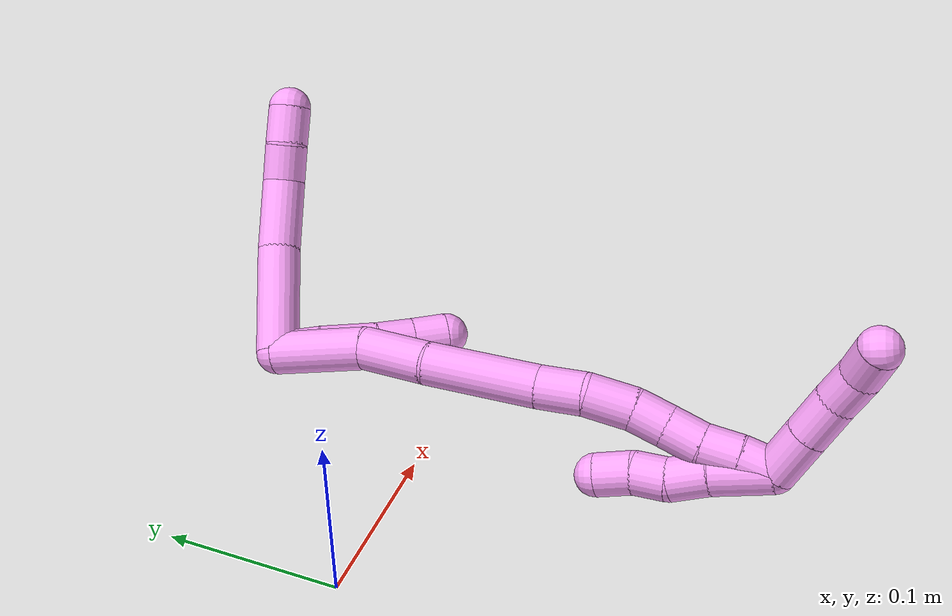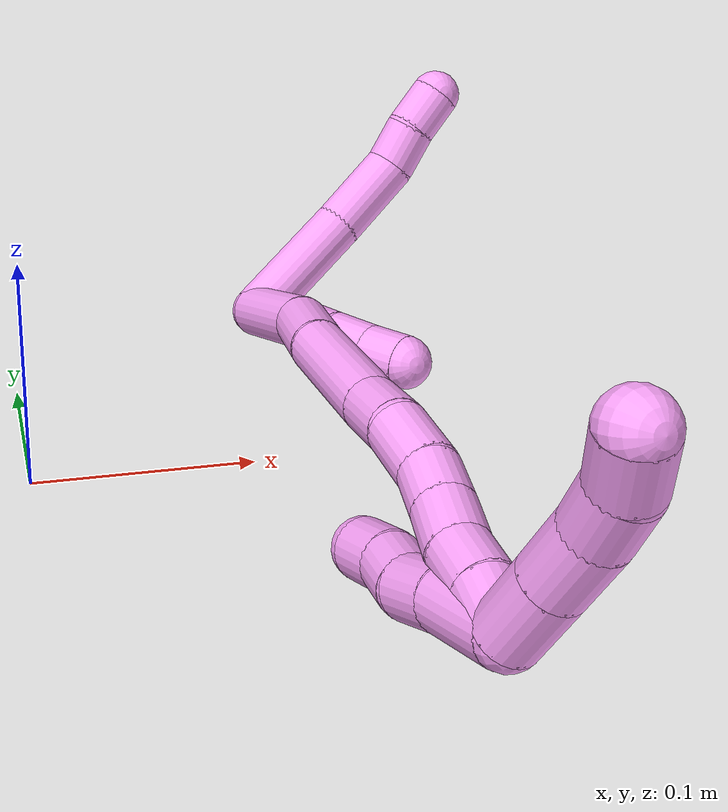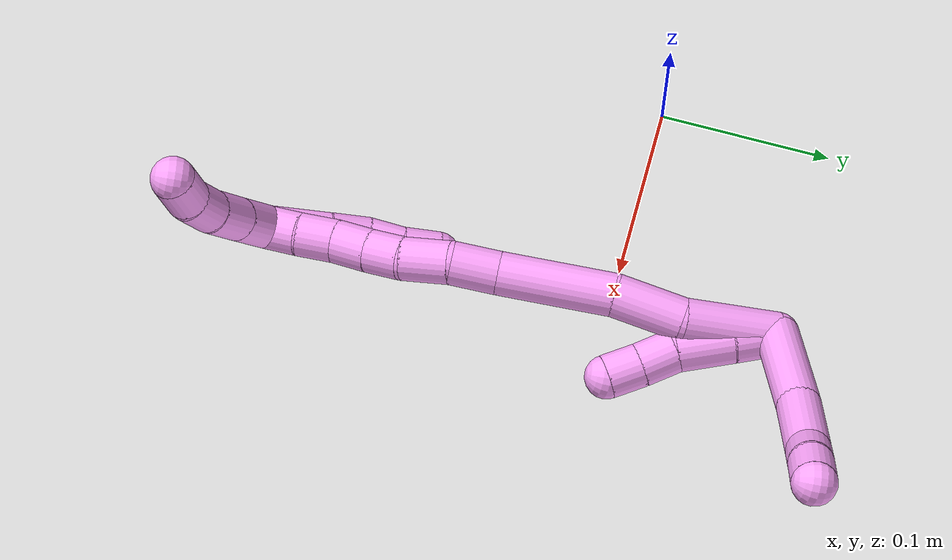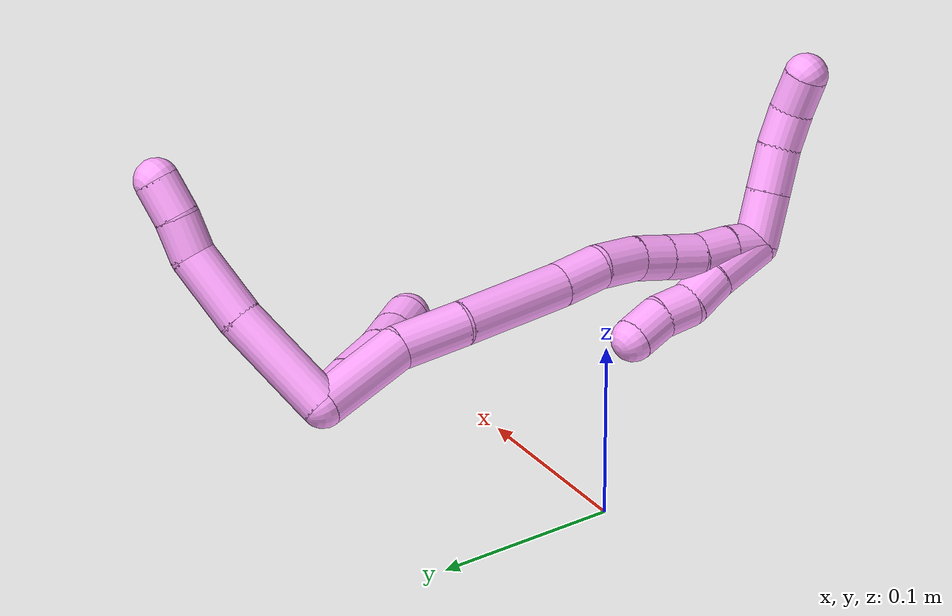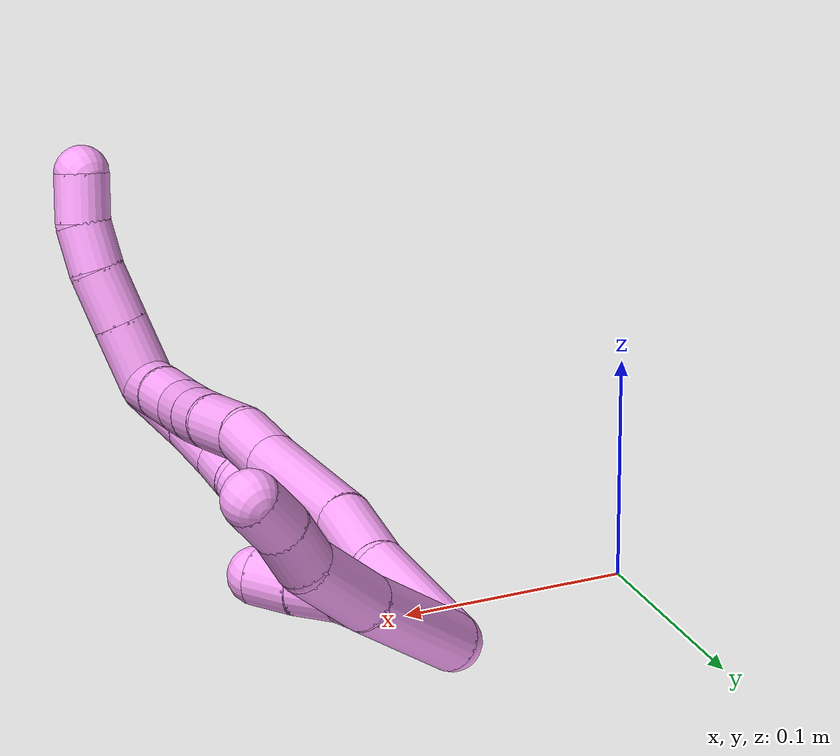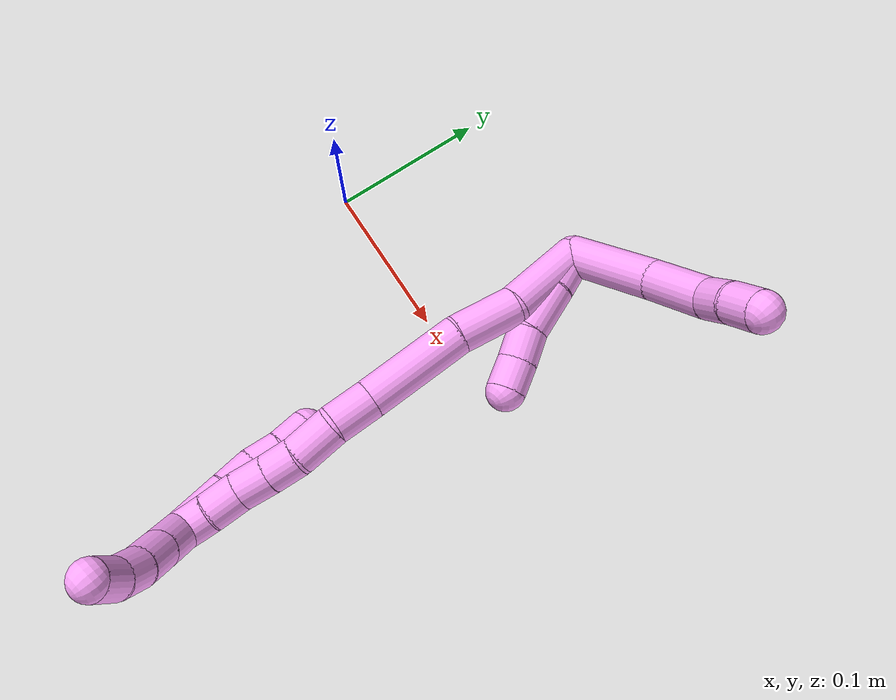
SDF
<sdf version="1.7">
 <world name="default">
  <model name="4">
   <static>0</static>
   <link name="4">
    <collision name="collision-cylinder-e_1_2_8">
     <pose>-0.001832 0.031658 -0.001998 -1.63382 -0.057684 0.061437</pose>
     <geometry><cylinder><radius>0.0125</radius><length>0.063547</length></cylinder></geometry>
     <surface>
      <friction><ode><mu>1.16</mu><mu2>1.16</mu2><slip1>0</slip1><slip2>0</slip2></ode></friction>
      <contact><ode><kp>1e+06</kp><kd>1</kd><max_vel>0</max_vel><min_depth>0.001</min_depth></ode></contact>
     </surface>
    </collision>
    <visual name="visual-cylinder-e_1_2_8">
     <pose>-0.001832 0.031658 -0.001998 -1.63382 -0.057684 0.061437</pose>
     <geometry><cylinder><radius>0.0125</radius><length>0.063547</length></cylinder></geometry>
     <material><ambient>1 0.65098 0.996078 1</ambient></material>
    </visual>
    <collision name="collision-cylinder-e_2_8_9">
     <pose>-0.006251 0.084147 -0.003356 -1.54011 -0.123494 0.119771</pose>
     <geometry><cylinder><radius>0.0125</radius><length>0.042003</length></cylinder></geometry>
     <surface>
      <friction><ode><mu>1.16</mu><mu2>1.16</mu2><slip1>0</slip1><slip2>0</slip2></ode></friction>
      <contact><ode><kp>1e+06</kp><kd>1</kd><max_vel>0</max_vel><min_depth>0.001</min_depth></ode></contact>
     </surface>
    </collision>
    <visual name="visual-cylinder-e_2_8_9">
     <pose>-0.006251 0.084147 -0.003356 -1.54011 -0.123494 0.119771</pose>
     <geometry><cylinder><radius>0.0125</radius><length>0.042003</length></cylinder></geometry>
     <material><ambient>1 0.65098 0.996078 1</ambient></material>
    </visual>
    <collision name="collision-cylinder-e_3_9_10">
     <pose>-0.01328 0.114979 -0.000805 -1.38192 -0.411445 0.34176</pose>
     <geometry><cylinder><radius>0.0125</radius><length>0.022216</length></cylinder></geometry>
     <surface>
      <friction><ode><mu>1.16</mu><mu2>1.16</mu2><slip1>0</slip1><slip2>0</slip2></ode></friction>
      <contact><ode><kp>1e+06</kp><kd>1</kd><max_vel>0</max_vel><min_depth>0.001</min_depth></ode></contact>
     </surface>
    </collision>
    <visual name="visual-cylinder-e_3_9_10">
     <pose>-0.01328 0.114979 -0.000805 -1.38192 -0.411445 0.34176</pose>
     <geometry><cylinder><radius>0.0125</radius><length>0.022216</length></cylinder></geometry>
     <material><ambient>1 0.65098 0.996078 1</ambient></material>
    </visual>
    <collision name="collision-cylinder-e_4_10_6">
     <pose>-0.020548 0.135648 0.002437 -1.44674 -0.256972 0.227193</pose>
     <geometry><cylinder><radius>0.0125</radius><length>0.022234</length></cylinder></geometry>
     <surface>
      <friction><ode><mu>1.16</mu><mu2>1.16</mu2><slip1>0</slip1><slip2>0</slip2></ode></friction>
      <contact><ode><kp>1e+06</kp><kd>1</kd><max_vel>0</max_vel><min_depth>0.001</min_depth></ode></contact>
     </surface>
    </collision>
    <visual name="visual-cylinder-e_4_10_6">
     <pose>-0.020548 0.135648 0.002437 -1.44674 -0.256972 0.227193</pose>
     <geometry><cylinder><radius>0.0125</radius><length>0.022234</length></cylinder></geometry>
     <material><ambient>1 0.65098 0.996078 1</ambient></material>
    </visual>
    <collision name="collision-cylinder-e_1_2_11">
     <pose>0.003428 0.002277 0.012431 -0.181184 0.264849 -0.0242</pose>
     <geometry><cylinder><radius>0.0125</radius><length>0.026188</length></cylinder></geometry>
     <surface>
      <friction><ode><mu>1.16</mu><mu2>1.16</mu2><slip1>0</slip1><slip2>0</slip2></ode></friction>
      <contact><ode><kp>1e+06</kp><kd>1</kd><max_vel>0</max_vel><min_depth>0.001</min_depth></ode></contact>
     </surface>
    </collision>
    <visual name="visual-cylinder-e_1_2_11">
     <pose>0.003428 0.002277 0.012431 -0.181184 0.264849 -0.0242</pose>
     <geometry><cylinder><radius>0.0125</radius><length>0.026188</length></cylinder></geometry>
     <material><ambient>1 0.65098 0.996078 1</ambient></material>
    </visual>
    <collision name="collision-cylinder-e_2_11_12">
     <pose>0.011797 0.006438 0.040216 -0.122041 0.309223 -0.019044</pose>
     <geometry><cylinder><radius>0.0125</radius><length>0.03248</length></cylinder></geometry>
     <surface>
      <friction><ode><mu>1.16</mu><mu2>1.16</mu2><slip1>0</slip1><slip2>0</slip2></ode></friction>
      <contact><ode><kp>1e+06</kp><kd>1</kd><max_vel>0</max_vel><min_depth>0.001</min_depth></ode></contact>
     </surface>
    </collision>
    <visual name="visual-cylinder-e_2_11_12">
     <pose>0.011797 0.006438 0.040216 -0.122041 0.309223 -0.019044</pose>
     <geometry><cylinder><radius>0.0125</radius><length>0.03248</length></cylinder></geometry>
     <material><ambient>1 0.65098 0.996078 1</ambient></material>
    </visual>
    <collision name="collision-cylinder-e_3_12_13">
     <pose>0.021901 0.010861 0.064526 -0.276422 0.506309 -0.07194</pose>
     <geometry><cylinder><radius>0.0125</radius><length>0.021288</length></cylinder></geometry>
     <surface>
      <friction><ode><mu>1.16</mu><mu2>1.16</mu2><slip1>0</slip1><slip2>0</slip2></ode></friction>
      <contact><ode><kp>1e+06</kp><kd>1</kd><max_vel>0</max_vel><min_depth>0.001</min_depth></ode></contact>
     </surface>
    </collision>
    <visual name="visual-cylinder-e_3_12_13">
     <pose>0.021901 0.010861 0.064526 -0.276422 0.506309 -0.07194</pose>
     <geometry><cylinder><radius>0.0125</radius><length>0.021288</length></cylinder></geometry>
     <material><ambient>1 0.65098 0.996078 1</ambient></material>
    </visual>
    <collision name="collision-cylinder-e_4_13_5">
     <pose>0.031198 0.015818 0.082284 -0.267845 0.425358 -0.058172</pose>
     <geometry><cylinder><radius>0.0125</radius><length>0.020044</length></cylinder></geometry>
     <surface>
      <friction><ode><mu>1.16</mu><mu2>1.16</mu2><slip1>0</slip1><slip2>0</slip2></ode></friction>
      <contact><ode><kp>1e+06</kp><kd>1</kd><max_vel>0</max_vel><min_depth>0.001</min_depth></ode></contact>
     </surface>
    </collision>
    <visual name="visual-cylinder-e_4_13_5">
     <pose>0.031198 0.015818 0.082284 -0.267845 0.425358 -0.058172</pose>
     <geometry><cylinder><radius>0.0125</radius><length>0.020044</length></cylinder></geometry>
     <material><ambient>1 0.65098 0.996078 1</ambient></material>
    </visual>
    <collision name="collision-cylinder-e_1_2_14">
     <pose>0.000152 0.000277 0.027646 -0.010018 0.005504 -2.8e-05</pose>
     <geometry><cylinder><radius>0.0125</radius><length>0.055295</length></cylinder></geometry>
     <surface>
      <friction><ode><mu>1.16</mu><mu2>1.16</mu2><slip1>0</slip1><slip2>0</slip2></ode></friction>
      <contact><ode><kp>1e+06</kp><kd>1</kd><max_vel>0</max_vel><min_depth>0.001</min_depth></ode></contact>
     </surface>
    </collision>
    <visual name="visual-cylinder-e_1_2_14">
     <pose>0.000152 0.000277 0.027646 -0.010018 0.005504 -2.8e-05</pose>
     <geometry><cylinder><radius>0.0125</radius><length>0.055295</length></cylinder></geometry>
     <material><ambient>1 0.65098 0.996078 1</ambient></material>
    </visual>
    <collision name="collision-cylinder-e_2_14_15">
     <pose>-9e-05 -0.004858 0.074646 0.272645 -0.019615 -0.002691</pose>
     <geometry><cylinder><radius>0.0125</radius><length>0.040201</length></cylinder></geometry>
     <surface>
      <friction><ode><mu>1.16</mu><mu2>1.16</mu2><slip1>0</slip1><slip2>0</slip2></ode></friction>
      <contact><ode><kp>1e+06</kp><kd>1</kd><max_vel>0</max_vel><min_depth>0.001</min_depth></ode></contact>
     </surface>
    </collision>
    <visual name="visual-cylinder-e_2_14_15">
     <pose>-9e-05 -0.004858 0.074646 0.272645 -0.019615 -0.002691</pose>
     <geometry><cylinder><radius>0.0125</radius><length>0.040201</length></cylinder></geometry>
     <material><ambient>1 0.65098 0.996078 1</ambient></material>
    </visual>
    <collision name="collision-cylinder-e_3_15_16">
     <pose>0.003873 -0.017135 0.126086 0.210801 0.132029 0.013988</pose>
     <geometry><cylinder><radius>0.0125</radius><length>0.066201</length></cylinder></geometry>
     <surface>
      <friction><ode><mu>1.16</mu><mu2>1.16</mu2><slip1>0</slip1><slip2>0</slip2></ode></friction>
      <contact><ode><kp>1e+06</kp><kd>1</kd><max_vel>0</max_vel><min_depth>0.001</min_depth></ode></contact>
     </surface>
    </collision>
    <visual name="visual-cylinder-e_3_15_16">
     <pose>0.003873 -0.017135 0.126086 0.210801 0.132029 0.013988</pose>
     <geometry><cylinder><radius>0.0125</radius><length>0.066201</length></cylinder></geometry>
     <material><ambient>1 0.65098 0.996078 1</ambient></material>
    </visual>
    <collision name="collision-cylinder-e_4_16_17">
     <pose>0.009176 -0.026341 0.171486 0.174002 0.069825 0.006093</pose>
     <geometry><cylinder><radius>0.0125</radius><length>0.0271</length></cylinder></geometry>
     <surface>
      <friction><ode><mu>1.16</mu><mu2>1.16</mu2><slip1>0</slip1><slip2>0</slip2></ode></friction>
      <contact><ode><kp>1e+06</kp><kd>1</kd><max_vel>0</max_vel><min_depth>0.001</min_depth></ode></contact>
     </surface>
    </collision>
    <visual name="visual-cylinder-e_4_16_17">
     <pose>0.009176 -0.026341 0.171486 0.174002 0.069825 0.006093</pose>
     <geometry><cylinder><radius>0.0125</radius><length>0.0271</length></cylinder></geometry>
     <material><ambient>1 0.65098 0.996078 1</ambient></material>
    </visual>
    <collision name="collision-cylinder-e_5_17_18">
     <pose>0.014269 -0.032272 0.197587 0.273724 0.302615 0.041992</pose>
     <geometry><cylinder><radius>0.0125</radius><length>0.027831</length></cylinder></geometry>
     <surface>
      <friction><ode><mu>1.16</mu><mu2>1.16</mu2><slip1>0</slip1><slip2>0</slip2></ode></friction>
      <contact><ode><kp>1e+06</kp><kd>1</kd><max_vel>0</max_vel><min_depth>0.001</min_depth></ode></contact>
     </surface>
    </collision>
    <visual name="visual-cylinder-e_5_17_18">
     <pose>0.014269 -0.032272 0.197587 0.273724 0.302615 0.041992</pose>
     <geometry><cylinder><radius>0.0125</radius><length>0.027831</length></cylinder></geometry>
     <material><ambient>1 0.65098 0.996078 1</ambient></material>
    </visual>
    <collision name="collision-cylinder-e_6_18_19">
     <pose>0.021078 -0.040246 0.219107 0.465308 0.266019 0.063385</pose>
     <geometry><cylinder><radius>0.0125</radius><length>0.020252</length></cylinder></geometry>
     <surface>
      <friction><ode><mu>1.16</mu><mu2>1.16</mu2><slip1>0</slip1><slip2>0</slip2></ode></friction>
      <contact><ode><kp>1e+06</kp><kd>1</kd><max_vel>0</max_vel><min_depth>0.001</min_depth></ode></contact>
     </surface>
    </collision>
    <visual name="visual-cylinder-e_6_18_19">
     <pose>0.021078 -0.040246 0.219107 0.465308 0.266019 0.063385</pose>
     <geometry><cylinder><radius>0.0125</radius><length>0.020252</length></cylinder></geometry>
     <material><ambient>1 0.65098 0.996078 1</ambient></material>
    </visual>
    <collision name="collision-cylinder-e_7_19_20">
     <pose>0.026104 -0.049482 0.237101 0.482489 0.222323 0.054912</pose>
     <geometry><cylinder><radius>0.0125</radius><length>0.021443</length></cylinder></geometry>
     <surface>
      <friction><ode><mu>1.16</mu><mu2>1.16</mu2><slip1>0</slip1><slip2>0</slip2></ode></friction>
      <contact><ode><kp>1e+06</kp><kd>1</kd><max_vel>0</max_vel><min_depth>0.001</min_depth></ode></contact>
     </surface>
    </collision>
    <visual name="visual-cylinder-e_7_19_20">
     <pose>0.026104 -0.049482 0.237101 0.482489 0.222323 0.054912</pose>
     <geometry><cylinder><radius>0.0125</radius><length>0.021443</length></cylinder></geometry>
     <material><ambient>1 0.65098 0.996078 1</ambient></material>
    </visual>
    <collision name="collision-cylinder-e_8_20_21">
     <pose>0.030554 -0.057413 0.256537 0.29392 0.193862 0.028785</pose>
     <geometry><cylinder><radius>0.0125</radius><length>0.021661</length></cylinder></geometry>
     <surface>
      <friction><ode><mu>1.16</mu><mu2>1.16</mu2><slip1>0</slip1><slip2>0</slip2></ode></friction>
      <contact><ode><kp>1e+06</kp><kd>1</kd><max_vel>0</max_vel><min_depth>0.001</min_depth></ode></contact>
     </surface>
    </collision>
    <visual name="visual-cylinder-e_8_20_21">
     <pose>0.030554 -0.057413 0.256537 0.29392 0.193862 0.028785</pose>
     <geometry><cylinder><radius>0.0125</radius><length>0.021661</length></cylinder></geometry>
     <material><ambient>1 0.65098 0.996078 1</ambient></material>
    </visual>
    <collision name="collision-cylinder-e_9_21_1">
     <pose>0.034877 -0.064267 0.275704 0.397354 0.225313 0.045548</pose>
     <geometry><cylinder><radius>0.0125</radius><length>0.020016</length></cylinder></geometry>
     <surface>
      <friction><ode><mu>1.16</mu><mu2>1.16</mu2><slip1>0</slip1><slip2>0</slip2></ode></friction>
      <contact><ode><kp>1e+06</kp><kd>1</kd><max_vel>0</max_vel><min_depth>0.001</min_depth></ode></contact>
     </surface>
    </collision>
    <visual name="visual-cylinder-e_9_21_1">
     <pose>0.034877 -0.064267 0.275704 0.397354 0.225313 0.045548</pose>
     <geometry><cylinder><radius>0.0125</radius><length>0.020016</length></cylinder></geometry>
     <material><ambient>1 0.65098 0.996078 1</ambient></material>
    </visual>
    <collision name="collision-cylinder-e_1_1_22">
     <pose>0.029505 -0.059766 0.294518 -0.700351 -0.53487 0.199479</pose>
     <geometry><cylinder><radius>0.0125</radius><length>0.029852</length></cylinder></geometry>
     <surface>
      <friction><ode><mu>1.16</mu><mu2>1.16</mu2><slip1>0</slip1><slip2>0</slip2></ode></friction>
      <contact><ode><kp>1e+06</kp><kd>1</kd><max_vel>0</max_vel><min_depth>0.001</min_depth></ode></contact>
     </surface>
    </collision>
    <visual name="visual-cylinder-e_1_1_22">
     <pose>0.029505 -0.059766 0.294518 -0.700351 -0.53487 0.199479</pose>
     <geometry><cylinder><radius>0.0125</radius><length>0.029852</length></cylinder></geometry>
     <material><ambient>1 0.65098 0.996078 1</ambient></material>
    </visual>
    <collision name="collision-cylinder-e_2_22_23">
     <pose>0.015199 -0.044349 0.312871 -0.696678 -0.541757 0.201016</pose>
     <geometry><cylinder><radius>0.0125</radius><length>0.025975</length></cylinder></geometry>
     <surface>
      <friction><ode><mu>1.16</mu><mu2>1.16</mu2><slip1>0</slip1><slip2>0</slip2></ode></friction>
      <contact><ode><kp>1e+06</kp><kd>1</kd><max_vel>0</max_vel><min_depth>0.001</min_depth></ode></contact>
     </surface>
    </collision>
    <visual name="visual-cylinder-e_2_22_23">
     <pose>0.015199 -0.044349 0.312871 -0.696678 -0.541757 0.201016</pose>
     <geometry><cylinder><radius>0.0125</radius><length>0.025975</length></cylinder></geometry>
     <material><ambient>1 0.65098 0.996078 1</ambient></material>
    </visual>
    <collision name="collision-cylinder-e_3_23_24">
     <pose>0.001867 -0.032335 0.328466 -0.604238 -0.658357 0.212131</pose>
     <geometry><cylinder><radius>0.0125</radius><length>0.021692</length></cylinder></geometry>
     <surface>
      <friction><ode><mu>1.16</mu><mu2>1.16</mu2><slip1>0</slip1><slip2>0</slip2></ode></friction>
      <contact><ode><kp>1e+06</kp><kd>1</kd><max_vel>0</max_vel><min_depth>0.001</min_depth></ode></contact>
     </surface>
    </collision>
    <visual name="visual-cylinder-e_3_23_24">
     <pose>0.001867 -0.032335 0.328466 -0.604238 -0.658357 0.212131</pose>
     <geometry><cylinder><radius>0.0125</radius><length>0.021692</length></cylinder></geometry>
     <material><ambient>1 0.65098 0.996078 1</ambient></material>
    </visual>
    <collision name="collision-cylinder-e_4_24_4">
     <pose>-0.013724 -0.023723 0.341199 -0.582528 -0.921793 0.29556</pose>
     <geometry><cylinder><radius>0.0125</radius><length>0.022481</length></cylinder></geometry>
     <surface>
      <friction><ode><mu>1.16</mu><mu2>1.16</mu2><slip1>0</slip1><slip2>0</slip2></ode></friction>
      <contact><ode><kp>1e+06</kp><kd>1</kd><max_vel>0</max_vel><min_depth>0.001</min_depth></ode></contact>
     </surface>
    </collision>
    <visual name="visual-cylinder-e_4_24_4">
     <pose>-0.013724 -0.023723 0.341199 -0.582528 -0.921793 0.29556</pose>
     <geometry><cylinder><radius>0.0125</radius><length>0.022481</length></cylinder></geometry>
     <material><ambient>1 0.65098 0.996078 1</ambient></material>
    </visual>
    <collision name="collision-cylinder-e_1_1_25">
     <pose>0.036376 -0.068473 0.267002 3.11723 -0.041604 -2.08224</pose>
     <geometry><cylinder><radius>0.0125</radius><length>0.035436</length></cylinder></geometry>
     <surface>
      <friction><ode><mu>1.16</mu><mu2>1.16</mu2><slip1>0</slip1><slip2>0</slip2></ode></friction>
      <contact><ode><kp>1e+06</kp><kd>1</kd><max_vel>0</max_vel><min_depth>0.001</min_depth></ode></contact>
     </surface>
    </collision>
    <visual name="visual-cylinder-e_1_1_25">
     <pose>0.036376 -0.068473 0.267002 3.11723 -0.041604 -2.08224</pose>
     <geometry><cylinder><radius>0.0125</radius><length>0.035436</length></cylinder></geometry>
     <material><ambient>1 0.65098 0.996078 1</ambient></material>
    </visual>
    <collision name="collision-cylinder-e_2_25_26">
     <pose>0.036127 -0.070253 0.237922 3.02366 0.042581 0.692366</pose>
     <geometry><cylinder><radius>0.0125</radius><length>0.022944</length></cylinder></geometry>
     <surface>
      <friction><ode><mu>1.16</mu><mu2>1.16</mu2><slip1>0</slip1><slip2>0</slip2></ode></friction>
      <contact><ode><kp>1e+06</kp><kd>1</kd><max_vel>0</max_vel><min_depth>0.001</min_depth></ode></contact>
     </surface>
    </collision>
    <visual name="visual-cylinder-e_2_25_26">
     <pose>0.036127 -0.070253 0.237922 3.02366 0.042581 0.692366</pose>
     <geometry><cylinder><radius>0.0125</radius><length>0.022944</length></cylinder></geometry>
     <material><ambient>1 0.65098 0.996078 1</ambient></material>
    </visual>
    <collision name="collision-cylinder-e_3_26_27">
     <pose>0.036357 -0.069437 0.216688 -2.92537 -0.025647 0.235223</pose>
     <geometry><cylinder><radius>0.0125</radius><length>0.02018</length></cylinder></geometry>
     <surface>
      <friction><ode><mu>1.16</mu><mu2>1.16</mu2><slip1>0</slip1><slip2>0</slip2></ode></friction>
      <contact><ode><kp>1e+06</kp><kd>1</kd><max_vel>0</max_vel><min_depth>0.001</min_depth></ode></contact>
     </surface>
    </collision>
    <visual name="visual-cylinder-e_3_26_27">
     <pose>0.036357 -0.069437 0.216688 -2.92537 -0.025647 0.235223</pose>
     <geometry><cylinder><radius>0.0125</radius><length>0.02018</length></cylinder></geometry>
     <material><ambient>1 0.65098 0.996078 1</ambient></material>
    </visual>
    <collision name="collision-cylinder-e_4_27_3">
     <pose>0.03607 -0.067742 0.196127 3.09785 -0.002655 -0.121196</pose>
     <geometry><cylinder><radius>0.0125</radius><length>0.02144</length></cylinder></geometry>
     <surface>
      <friction><ode><mu>1.16</mu><mu2>1.16</mu2><slip1>0</slip1><slip2>0</slip2></ode></friction>
      <contact><ode><kp>1e+06</kp><kd>1</kd><max_vel>0</max_vel><min_depth>0.001</min_depth></ode></contact>
     </surface>
    </collision>
    <visual name="visual-cylinder-e_4_27_3">
     <pose>0.03607 -0.067742 0.196127 3.09785 -0.002655 -0.121196</pose>
     <geometry><cylinder><radius>0.0125</radius><length>0.02144</length></cylinder></geometry>
     <material><ambient>1 0.65098 0.996078 1</ambient></material>
    </visual>
    <collision name="collision-sphere-3">
     <pose>0.036041 -0.068211 0.185417 0 -0 0</pose>
     <geometry><sphere><radius>0.0125</radius></sphere></geometry>
     <surface>
      <friction><ode><mu>1.16</mu><mu2>1.16</mu2><slip1>0</slip1><slip2>0</slip2></ode></friction>
      <contact><ode><kp>1e+06</kp><kd>1</kd><max_vel>0</max_vel><min_depth>0.001</min_depth></ode></contact>
     </surface>
    </collision>
    <visual name="visual-sphere-3">
     <pose>0.036041 -0.068211 0.185417 0 -0 0</pose>
     <geometry><sphere><radius>0.0125</radius></sphere></geometry>
     <material><ambient>1 0.65098 0.996078 1</ambient></material>
    </visual>
    <collision name="collision-sphere-27">
     <pose>0.036098 -0.067273 0.206836 0 -0 0</pose>
     <geometry><sphere><radius>0.0125</radius></sphere></geometry>
     <surface>
      <friction><ode><mu>1.16</mu><mu2>1.16</mu2><slip1>0</slip1><slip2>0</slip2></ode></friction>
      <contact><ode><kp>1e+06</kp><kd>1</kd><max_vel>0</max_vel><min_depth>0.001</min_depth></ode></contact>
     </surface>
    </collision>
    <visual name="visual-sphere-27">
     <pose>0.036098 -0.067273 0.206836 0 -0 0</pose>
     <geometry><sphere><radius>0.0125</radius></sphere></geometry>
     <material><ambient>1 0.65098 0.996078 1</ambient></material>
    </visual>
    <collision name="collision-sphere-26">
     <pose>0.036616 -0.071601 0.22654 0 -0 0</pose>
     <geometry><sphere><radius>0.0125</radius></sphere></geometry>
     <surface>
      <friction><ode><mu>1.16</mu><mu2>1.16</mu2><slip1>0</slip1><slip2>0</slip2></ode></friction>
      <contact><ode><kp>1e+06</kp><kd>1</kd><max_vel>0</max_vel><min_depth>0.001</min_depth></ode></contact>
     </surface>
    </collision>
    <visual name="visual-sphere-26">
     <pose>0.036616 -0.071601 0.22654 0 -0 0</pose>
     <geometry><sphere><radius>0.0125</radius></sphere></geometry>
     <material><ambient>1 0.65098 0.996078 1</ambient></material>
    </visual>
    <collision name="collision-sphere-25">
     <pose>0.035639 -0.068904 0.249304 0 -0 0</pose>
     <geometry><sphere><radius>0.0125</radius></sphere></geometry>
     <surface>
      <friction><ode><mu>1.16</mu><mu2>1.16</mu2><slip1>0</slip1><slip2>0</slip2></ode></friction>
      <contact><ode><kp>1e+06</kp><kd>1</kd><max_vel>0</max_vel><min_depth>0.001</min_depth></ode></contact>
     </surface>
    </collision>
    <visual name="visual-sphere-25">
     <pose>0.035639 -0.068904 0.249304 0 -0 0</pose>
     <geometry><sphere><radius>0.0125</radius></sphere></geometry>
     <material><ambient>1 0.65098 0.996078 1</ambient></material>
    </visual>
    <collision name="collision-sphere-4">
     <pose>-0.022679 -0.019986 0.346872 0 -0 0</pose>
     <geometry><sphere><radius>0.0125</radius></sphere></geometry>
     <surface>
      <friction><ode><mu>1.16</mu><mu2>1.16</mu2><slip1>0</slip1><slip2>0</slip2></ode></friction>
      <contact><ode><kp>1e+06</kp><kd>1</kd><max_vel>0</max_vel><min_depth>0.001</min_depth></ode></contact>
     </surface>
    </collision>
    <visual name="visual-sphere-4">
     <pose>-0.022679 -0.019986 0.346872 0 -0 0</pose>
     <geometry><sphere><radius>0.0125</radius></sphere></geometry>
     <material><ambient>1 0.65098 0.996078 1</ambient></material>
    </visual>
    <collision name="collision-sphere-24">
     <pose>-0.004769 -0.027461 0.335526 0 -0 0</pose>
     <geometry><sphere><radius>0.0125</radius></sphere></geometry>
     <surface>
      <friction><ode><mu>1.16</mu><mu2>1.16</mu2><slip1>0</slip1><slip2>0</slip2></ode></friction>
      <contact><ode><kp>1e+06</kp><kd>1</kd><max_vel>0</max_vel><min_depth>0.001</min_depth></ode></contact>
     </surface>
    </collision>
    <visual name="visual-sphere-24">
     <pose>-0.004769 -0.027461 0.335526 0 -0 0</pose>
     <geometry><sphere><radius>0.0125</radius></sphere></geometry>
     <material><ambient>1 0.65098 0.996078 1</ambient></material>
    </visual>
    <collision name="collision-sphere-23">
     <pose>0.008502 -0.037209 0.321406 0 -0 0</pose>
     <geometry><sphere><radius>0.0125</radius></sphere></geometry>
     <surface>
      <friction><ode><mu>1.16</mu><mu2>1.16</mu2><slip1>0</slip1><slip2>0</slip2></ode></friction>
      <contact><ode><kp>1e+06</kp><kd>1</kd><max_vel>0</max_vel><min_depth>0.001</min_depth></ode></contact>
     </surface>
    </collision>
    <visual name="visual-sphere-23">
     <pose>0.008502 -0.037209 0.321406 0 -0 0</pose>
     <geometry><sphere><radius>0.0125</radius></sphere></geometry>
     <material><ambient>1 0.65098 0.996078 1</ambient></material>
    </visual>
    <collision name="collision-sphere-22">
     <pose>0.021896 -0.05149 0.304336 0 -0 0</pose>
     <geometry><sphere><radius>0.0125</radius></sphere></geometry>
     <surface>
      <friction><ode><mu>1.16</mu><mu2>1.16</mu2><slip1>0</slip1><slip2>0</slip2></ode></friction>
      <contact><ode><kp>1e+06</kp><kd>1</kd><max_vel>0</max_vel><min_depth>0.001</min_depth></ode></contact>
     </surface>
    </collision>
    <visual name="visual-sphere-22">
     <pose>0.021896 -0.05149 0.304336 0 -0 0</pose>
     <geometry><sphere><radius>0.0125</radius></sphere></geometry>
     <material><ambient>1 0.65098 0.996078 1</ambient></material>
    </visual>
    <collision name="collision-sphere-1">
     <pose>0.037113 -0.068042 0.284699 0 -0 0</pose>
     <geometry><sphere><radius>0.0125</radius></sphere></geometry>
     <surface>
      <friction><ode><mu>1.16</mu><mu2>1.16</mu2><slip1>0</slip1><slip2>0</slip2></ode></friction>
      <contact><ode><kp>1e+06</kp><kd>1</kd><max_vel>0</max_vel><min_depth>0.001</min_depth></ode></contact>
     </surface>
    </collision>
    <visual name="visual-sphere-1">
     <pose>0.037113 -0.068042 0.284699 0 -0 0</pose>
     <geometry><sphere><radius>0.0125</radius></sphere></geometry>
     <material><ambient>1 0.65098 0.996078 1</ambient></material>
    </visual>
    <collision name="collision-sphere-21">
     <pose>0.032641 -0.060492 0.266709 0 -0 0</pose>
     <geometry><sphere><radius>0.0125</radius></sphere></geometry>
     <surface>
      <friction><ode><mu>1.16</mu><mu2>1.16</mu2><slip1>0</slip1><slip2>0</slip2></ode></friction>
      <contact><ode><kp>1e+06</kp><kd>1</kd><max_vel>0</max_vel><min_depth>0.001</min_depth></ode></contact>
     </surface>
    </collision>
    <visual name="visual-sphere-21">
     <pose>0.032641 -0.060492 0.266709 0 -0 0</pose>
     <geometry><sphere><radius>0.0125</radius></sphere></geometry>
     <material><ambient>1 0.65098 0.996078 1</ambient></material>
    </visual>
    <collision name="collision-sphere-11">
     <pose>0.006855 0.004554 0.024861 0 -0 0</pose>
     <geometry><sphere><radius>0.0125</radius></sphere></geometry>
     <surface>
      <friction><ode><mu>1.16</mu><mu2>1.16</mu2><slip1>0</slip1><slip2>0</slip2></ode></friction>
      <contact><ode><kp>1e+06</kp><kd>1</kd><max_vel>0</max_vel><min_depth>0.001</min_depth></ode></contact>
     </surface>
    </collision>
    <visual name="visual-sphere-11">
     <pose>0.006855 0.004554 0.024861 0 -0 0</pose>
     <geometry><sphere><radius>0.0125</radius></sphere></geometry>
     <material><ambient>1 0.65098 0.996078 1</ambient></material>
    </visual>
    <collision name="collision-sphere-6">
     <pose>-0.023373 0.146317 0.003768 0 -0 0</pose>
     <geometry><sphere><radius>0.0125</radius></sphere></geometry>
     <surface>
      <friction><ode><mu>1.16</mu><mu2>1.16</mu2><slip1>0</slip1><slip2>0</slip2></ode></friction>
      <contact><ode><kp>1e+06</kp><kd>1</kd><max_vel>0</max_vel><min_depth>0.001</min_depth></ode></contact>
     </surface>
    </collision>
    <visual name="visual-sphere-6">
     <pose>-0.023373 0.146317 0.003768 0 -0 0</pose>
     <geometry><sphere><radius>0.0125</radius></sphere></geometry>
     <material><ambient>1 0.65098 0.996078 1</ambient></material>
    </visual>
    <collision name="collision-sphere-10">
     <pose>-0.017723 0.124979 0.001107 0 -0 0</pose>
     <geometry><sphere><radius>0.0125</radius></sphere></geometry>
     <surface>
      <friction><ode><mu>1.16</mu><mu2>1.16</mu2><slip1>0</slip1><slip2>0</slip2></ode></friction>
      <contact><ode><kp>1e+06</kp><kd>1</kd><max_vel>0</max_vel><min_depth>0.001</min_depth></ode></contact>
     </surface>
    </collision>
    <visual name="visual-sphere-10">
     <pose>-0.017723 0.124979 0.001107 0 -0 0</pose>
     <geometry><sphere><radius>0.0125</radius></sphere></geometry>
     <material><ambient>1 0.65098 0.996078 1</ambient></material>
    </visual>
    <collision name="collision-sphere-9">
     <pose>-0.008838 0.104979 -0.002716 0 -0 0</pose>
     <geometry><sphere><radius>0.0125</radius></sphere></geometry>
     <surface>
      <friction><ode><mu>1.16</mu><mu2>1.16</mu2><slip1>0</slip1><slip2>0</slip2></ode></friction>
      <contact><ode><kp>1e+06</kp><kd>1</kd><max_vel>0</max_vel><min_depth>0.001</min_depth></ode></contact>
     </surface>
    </collision>
    <visual name="visual-sphere-9">
     <pose>-0.008838 0.104979 -0.002716 0 -0 0</pose>
     <geometry><sphere><radius>0.0125</radius></sphere></geometry>
     <material><ambient>1 0.65098 0.996078 1</ambient></material>
    </visual>
    <collision name="collision-sphere-2">
     <geometry><sphere><radius>0.0125</radius></sphere></geometry>
     <surface>
      <friction><ode><mu>1.16</mu><mu2>1.16</mu2><slip1>0</slip1><slip2>0</slip2></ode></friction>
      <contact><ode><kp>1e+06</kp><kd>1</kd><max_vel>0</max_vel><min_depth>0.001</min_depth></ode></contact>
     </surface>
    </collision>
    <visual name="visual-sphere-2">
     <geometry><sphere><radius>0.0125</radius></sphere></geometry>
     <material><ambient>1 0.65098 0.996078 1</ambient></material>
    </visual>
    <collision name="collision-sphere-19">
     <pose>0.02374 -0.04463 0.227837 0 -0 0</pose>
     <geometry><sphere><radius>0.0125</radius></sphere></geometry>
     <surface>
      <friction><ode><mu>1.16</mu><mu2>1.16</mu2><slip1>0</slip1><slip2>0</slip2></ode></friction>
      <contact><ode><kp>1e+06</kp><kd>1</kd><max_vel>0</max_vel><min_depth>0.001</min_depth></ode></contact>
     </surface>
    </collision>
    <visual name="visual-sphere-19">
     <pose>0.02374 -0.04463 0.227837 0 -0 0</pose>
     <geometry><sphere><radius>0.0125</radius></sphere></geometry>
     <material><ambient>1 0.65098 0.996078 1</ambient></material>
    </visual>
    <collision name="collision-sphere-8">
     <pose>-0.003664 0.063316 -0.003995 0 -0 0</pose>
     <geometry><sphere><radius>0.0125</radius></sphere></geometry>
     <surface>
      <friction><ode><mu>1.16</mu><mu2>1.16</mu2><slip1>0</slip1><slip2>0</slip2></ode></friction>
      <contact><ode><kp>1e+06</kp><kd>1</kd><max_vel>0</max_vel><min_depth>0.001</min_depth></ode></contact>
     </surface>
    </collision>
    <visual name="visual-sphere-8">
     <pose>-0.003664 0.063316 -0.003995 0 -0 0</pose>
     <geometry><sphere><radius>0.0125</radius></sphere></geometry>
     <material><ambient>1 0.65098 0.996078 1</ambient></material>
    </visual>
    <collision name="collision-sphere-12">
     <pose>0.016739 0.008321 0.055571 0 -0 0</pose>
     <geometry><sphere><radius>0.0125</radius></sphere></geometry>
     <surface>
      <friction><ode><mu>1.16</mu><mu2>1.16</mu2><slip1>0</slip1><slip2>0</slip2></ode></friction>
      <contact><ode><kp>1e+06</kp><kd>1</kd><max_vel>0</max_vel><min_depth>0.001</min_depth></ode></contact>
     </surface>
    </collision>
    <visual name="visual-sphere-12">
     <pose>0.016739 0.008321 0.055571 0 -0 0</pose>
     <geometry><sphere><radius>0.0125</radius></sphere></geometry>
     <material><ambient>1 0.65098 0.996078 1</ambient></material>
    </visual>
    <collision name="collision-sphere-13">
     <pose>0.027063 0.013402 0.073481 0 -0 0</pose>
     <geometry><sphere><radius>0.0125</radius></sphere></geometry>
     <surface>
      <friction><ode><mu>1.16</mu><mu2>1.16</mu2><slip1>0</slip1><slip2>0</slip2></ode></friction>
      <contact><ode><kp>1e+06</kp><kd>1</kd><max_vel>0</max_vel><min_depth>0.001</min_depth></ode></contact>
     </surface>
    </collision>
    <visual name="visual-sphere-13">
     <pose>0.027063 0.013402 0.073481 0 -0 0</pose>
     <geometry><sphere><radius>0.0125</radius></sphere></geometry>
     <material><ambient>1 0.65098 0.996078 1</ambient></material>
    </visual>
    <collision name="collision-sphere-5">
     <pose>0.035334 0.018234 0.091088 0 -0 0</pose>
     <geometry><sphere><radius>0.0125</radius></sphere></geometry>
     <surface>
      <friction><ode><mu>1.16</mu><mu2>1.16</mu2><slip1>0</slip1><slip2>0</slip2></ode></friction>
      <contact><ode><kp>1e+06</kp><kd>1</kd><max_vel>0</max_vel><min_depth>0.001</min_depth></ode></contact>
     </surface>
    </collision>
    <visual name="visual-sphere-5">
     <pose>0.035334 0.018234 0.091088 0 -0 0</pose>
     <geometry><sphere><radius>0.0125</radius></sphere></geometry>
     <material><ambient>1 0.65098 0.996078 1</ambient></material>
    </visual>
    <collision name="collision-sphere-14">
     <pose>0.000304 0.000554 0.055292 0 -0 0</pose>
     <geometry><sphere><radius>0.0125</radius></sphere></geometry>
     <surface>
      <friction><ode><mu>1.16</mu><mu2>1.16</mu2><slip1>0</slip1><slip2>0</slip2></ode></friction>
      <contact><ode><kp>1e+06</kp><kd>1</kd><max_vel>0</max_vel><min_depth>0.001</min_depth></ode></contact>
     </surface>
    </collision>
    <visual name="visual-sphere-14">
     <pose>0.000304 0.000554 0.055292 0 -0 0</pose>
     <geometry><sphere><radius>0.0125</radius></sphere></geometry>
     <material><ambient>1 0.65098 0.996078 1</ambient></material>
    </visual>
    <collision name="collision-sphere-15">
     <pose>-0.000484 -0.010269 0.094 0 -0 0</pose>
     <geometry><sphere><radius>0.0125</radius></sphere></geometry>
     <surface>
      <friction><ode><mu>1.16</mu><mu2>1.16</mu2><slip1>0</slip1><slip2>0</slip2></ode></friction>
      <contact><ode><kp>1e+06</kp><kd>1</kd><max_vel>0</max_vel><min_depth>0.001</min_depth></ode></contact>
     </surface>
    </collision>
    <visual name="visual-sphere-15">
     <pose>-0.000484 -0.010269 0.094 0 -0 0</pose>
     <geometry><sphere><radius>0.0125</radius></sphere></geometry>
     <material><ambient>1 0.65098 0.996078 1</ambient></material>
    </visual>
    <collision name="collision-sphere-16">
     <pose>0.008231 -0.024001 0.158173 0 -0 0</pose>
     <geometry><sphere><radius>0.0125</radius></sphere></geometry>
     <surface>
      <friction><ode><mu>1.16</mu><mu2>1.16</mu2><slip1>0</slip1><slip2>0</slip2></ode></friction>
      <contact><ode><kp>1e+06</kp><kd>1</kd><max_vel>0</max_vel><min_depth>0.001</min_depth></ode></contact>
     </surface>
    </collision>
    <visual name="visual-sphere-16">
     <pose>0.008231 -0.024001 0.158173 0 -0 0</pose>
     <geometry><sphere><radius>0.0125</radius></sphere></geometry>
     <material><ambient>1 0.65098 0.996078 1</ambient></material>
    </visual>
    <collision name="collision-sphere-17">
     <pose>0.010122 -0.028681 0.184799 0 -0 0</pose>
     <geometry><sphere><radius>0.0125</radius></sphere></geometry>
     <surface>
      <friction><ode><mu>1.16</mu><mu2>1.16</mu2><slip1>0</slip1><slip2>0</slip2></ode></friction>
      <contact><ode><kp>1e+06</kp><kd>1</kd><max_vel>0</max_vel><min_depth>0.001</min_depth></ode></contact>
     </surface>
    </collision>
    <visual name="visual-sphere-17">
     <pose>0.010122 -0.028681 0.184799 0 -0 0</pose>
     <geometry><sphere><radius>0.0125</radius></sphere></geometry>
     <material><ambient>1 0.65098 0.996078 1</ambient></material>
    </visual>
    <collision name="collision-sphere-18">
     <pose>0.018416 -0.035862 0.210376 0 -0 0</pose>
     <geometry><sphere><radius>0.0125</radius></sphere></geometry>
     <surface>
      <friction><ode><mu>1.16</mu><mu2>1.16</mu2><slip1>0</slip1><slip2>0</slip2></ode></friction>
      <contact><ode><kp>1e+06</kp><kd>1</kd><max_vel>0</max_vel><min_depth>0.001</min_depth></ode></contact>
     </surface>
    </collision>
    <visual name="visual-sphere-18">
     <pose>0.018416 -0.035862 0.210376 0 -0 0</pose>
     <geometry><sphere><radius>0.0125</radius></sphere></geometry>
     <material><ambient>1 0.65098 0.996078 1</ambient></material>
    </visual>
    <collision name="collision-sphere-20">
     <pose>0.028468 -0.054334 0.246365 0 -0 0</pose>
     <geometry><sphere><radius>0.0125</radius></sphere></geometry>
     <surface>
      <friction><ode><mu>1.16</mu><mu2>1.16</mu2><slip1>0</slip1><slip2>0</slip2></ode></friction>
      <contact><ode><kp>1e+06</kp><kd>1</kd><max_vel>0</max_vel><min_depth>0.001</min_depth></ode></contact>
     </surface>
    </collision>
    <visual name="visual-sphere-20">
     <pose>0.028468 -0.054334 0.246365 0 -0 0</pose>
     <geometry><sphere><radius>0.0125</radius></sphere></geometry>
     <material><ambient>1 0.65098 0.996078 1</ambient></material>
    </visual>
    <inertial>
     <pose>0.011093 -0.008615 0.137674 0 -0 0</pose>
     <mass>0.75</mass>
     <inertia><ixx>0.000116</ixx><ixy>0</ixy><ixz>0</ixz><iyy>8.9e-05</iyy><iyz>0</iyz><izz>-3e-06</izz></inertia>
    </inertial>
   </link>
   <pose>0.12265 0.096295 0.036152 1.18002 0.941252 -0.153465</pose>
  </model>
 </world>
</sdf>
